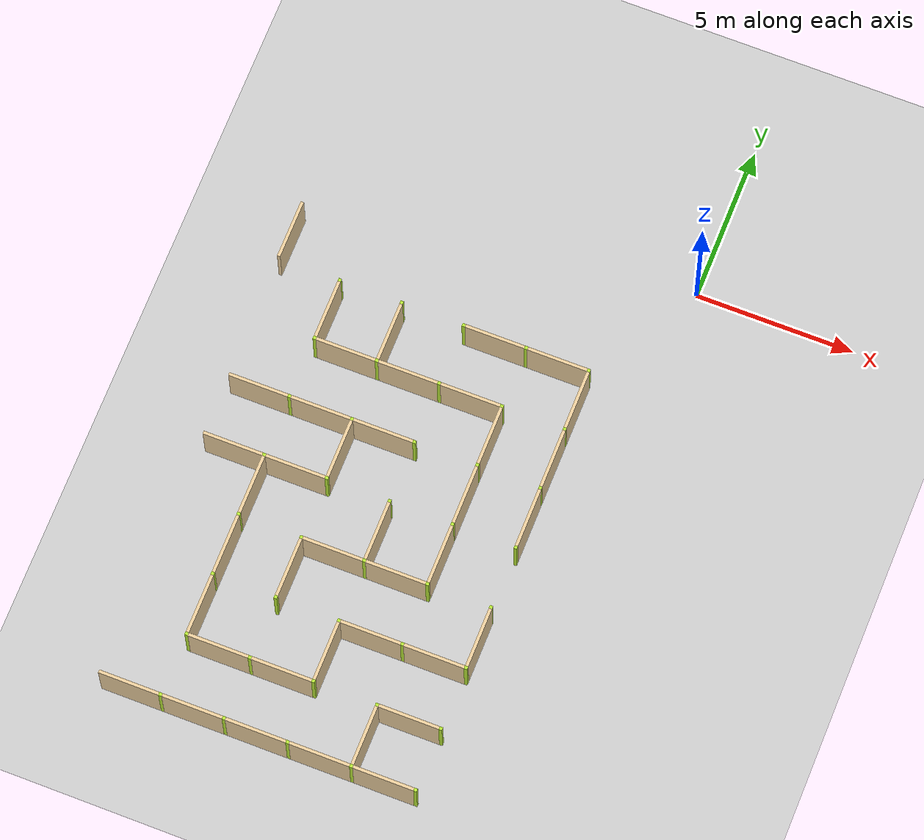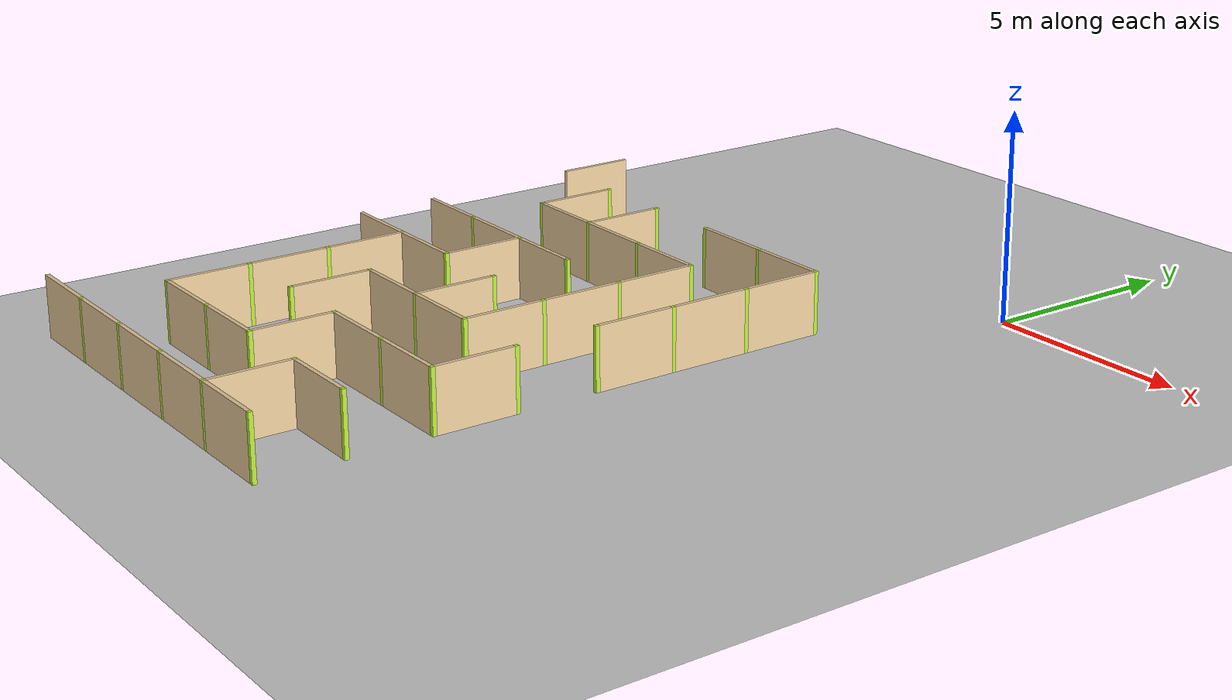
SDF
<sdf version="1.4">
 <world name="maze_world">
  <model name="ground">
   <static>true</static>
   <link name="ground_link">
    <collision name="collision1"><geometry><plane><normal>0 0 1</normal></plane></geometry></collision>
    <visual name="visual1"><geometry><plane><normal>0 0 1</normal><size>100 100</size></plane></geometry></visual>
   </link>
  </model>
  <model name="Untitled">
   <link name="Wall_4_11_v">
    <collision name="Wall_0_Collision">
     <geometry><box><size>1.9 0.1 1.5</size></box></geometry>
     <pose>0 0 0.75 0 -0 0</pose>
    </collision>
    <visual name="Wall_0_Visual">
     <pose>0 0 0.75 0 -0 0</pose>
     <geometry><box><size>1.9 0.1 1.5</size></box></geometry>
     <material>
      <script><uri>file://media/materials/scripts/gazebo.material</uri><name>Gazebo/Grey</name></script>
      <ambient>0.921569 0.807843 0.615686 1</ambient>
     </material>
     <meta><layer>0</layer></meta>
    </visual>
    <pose>-12 -3.0 0 0 -0 1.5708</pose>
   </link>
   <link name="Wall_5_12_v">
    <collision name="Wall_0_Collision">
     <geometry><box><size>1.9 0.1 1.5</size></box></geometry>
     <pose>0 0 0.75 0 -0 0</pose>
    </collision>
    <visual name="Wall_0_Visual">
     <pose>0 0 0.75 0 -0 0</pose>
     <geometry><box><size>1.9 0.1 1.5</size></box></geometry>
     <material>
      <script><uri>file://media/materials/scripts/gazebo.material</uri><name>Gazebo/Grey</name></script>
      <ambient>0.921569 0.807843 0.615686 1</ambient>
     </material>
     <meta><layer>0</layer></meta>
    </visual>
    <pose>-10 -5.0 0 0 -0 1.5708</pose>
   </link>
   <link name="Joint_-10_-4">
    <collision name="Wall_2_Collision">
     <geometry><box><size>0.1 0.1 1.5</size></box></geometry>
     <pose>0 0 0.75 0 -0 0</pose>
    </collision>
    <visual name="Wall_2_Visual">
     <pose>0 0 0.75 0 -0 0</pose>
     <geometry><box><size>0.1 0.1 1.5</size></box></geometry>
     <material>
      <script><uri>file://media/materials/scripts/gazebo.material</uri><name>Gazebo/Grey</name></script>
      <ambient>0.721569 0.907843 0.215686 1</ambient>
     </material>
     <meta><layer>0</layer></meta>
    </visual>
    <pose>-10 -4 0 0 -0 0</pose>
   </link>
   <link name="Wall_6_12_v">
    <collision name="Wall_0_Collision">
     <geometry><box><size>1.9 0.1 1.5</size></box></geometry>
     <pose>0 0 0.75 0 -0 0</pose>
    </collision>
    <visual name="Wall_0_Visual">
     <pose>0 0 0.75 0 -0 0</pose>
     <geometry><box><size>1.9 0.1 1.5</size></box></geometry>
     <material>
      <script><uri>file://media/materials/scripts/gazebo.material</uri><name>Gazebo/Grey</name></script>
      <ambient>0.921569 0.807843 0.615686 1</ambient>
     </material>
     <meta><layer>0</layer></meta>
    </visual>
    <pose>-8 -5.0 0 0 -0 1.5708</pose>
   </link>
   <link name="Joint_-8_-4">
    <collision name="Wall_2_Collision">
     <geometry><box><size>0.1 0.1 1.5</size></box></geometry>
     <pose>0 0 0.75 0 -0 0</pose>
    </collision>
    <visual name="Wall_2_Visual">
     <pose>0 0 0.75 0 -0 0</pose>
     <geometry><box><size>0.1 0.1 1.5</size></box></geometry>
     <material>
      <script><uri>file://media/materials/scripts/gazebo.material</uri><name>Gazebo/Grey</name></script>
      <ambient>0.721569 0.907843 0.215686 1</ambient>
     </material>
     <meta><layer>0</layer></meta>
    </visual>
    <pose>-8 -4 0 0 -0 0</pose>
   </link>
   <link name="Wall_7_12_h">
    <collision name="Wall_0_Collision">
     <geometry><box><size>1.9 0.1 1.5</size></box></geometry>
     <pose>0 0 0.75 0 -0 0</pose>
    </collision>
    <visual name="Wall_0_Visual">
     <pose>0 0 0.75 0 -0 0</pose>
     <geometry><box><size>1.9 0.1 1.5</size></box></geometry>
     <material>
      <script><uri>file://media/materials/scripts/gazebo.material</uri><name>Gazebo/Grey</name></script>
      <ambient>0.921569 0.807843 0.615686 1</ambient>
     </material>
     <meta><layer>0</layer></meta>
    </visual>
    <pose>-5.0 -4 0 0 -0 0</pose>
   </link>
   <link name="Joint_-6_-4">
    <collision name="Wall_2_Collision">
     <geometry><box><size>0.1 0.1 1.5</size></box></geometry>
     <pose>0 0 0.75 0 -0 0</pose>
    </collision>
    <visual name="Wall_2_Visual">
     <pose>0 0 0.75 0 -0 0</pose>
     <geometry><box><size>0.1 0.1 1.5</size></box></geometry>
     <material>
      <script><uri>file://media/materials/scripts/gazebo.material</uri><name>Gazebo/Grey</name></script>
      <ambient>0.721569 0.907843 0.215686 1</ambient>
     </material>
     <meta><layer>0</layer></meta>
    </visual>
    <pose>-6 -4 0 0 -0 0</pose>
   </link>
   <link name="Wall_8_12_h">
    <collision name="Wall_0_Collision">
     <geometry><box><size>1.9 0.1 1.5</size></box></geometry>
     <pose>0 0 0.75 0 -0 0</pose>
    </collision>
    <visual name="Wall_0_Visual">
     <pose>0 0 0.75 0 -0 0</pose>
     <geometry><box><size>1.9 0.1 1.5</size></box></geometry>
     <material>
      <script><uri>file://media/materials/scripts/gazebo.material</uri><name>Gazebo/Grey</name></script>
      <ambient>0.921569 0.807843 0.615686 1</ambient>
     </material>
     <meta><layer>0</layer></meta>
    </visual>
    <pose>-3.0 -4 0 0 -0 0</pose>
   </link>
   <link name="Joint_-4_-4">
    <collision name="Wall_2_Collision">
     <geometry><box><size>0.1 0.1 1.5</size></box></geometry>
     <pose>0 0 0.75 0 -0 0</pose>
    </collision>
    <visual name="Wall_2_Visual">
     <pose>0 0 0.75 0 -0 0</pose>
     <geometry><box><size>0.1 0.1 1.5</size></box></geometry>
     <material>
      <script><uri>file://media/materials/scripts/gazebo.material</uri><name>Gazebo/Grey</name></script>
      <ambient>0.721569 0.907843 0.215686 1</ambient>
     </material>
     <meta><layer>0</layer></meta>
    </visual>
    <pose>-4 -4 0 0 -0 0</pose>
   </link>
   <link name="Wall_9_12_v">
    <collision name="Wall_0_Collision">
     <geometry><box><size>1.9 0.1 1.5</size></box></geometry>
     <pose>0 0 0.75 0 -0 0</pose>
    </collision>
    <visual name="Wall_0_Visual">
     <pose>0 0 0.75 0 -0 0</pose>
     <geometry><box><size>1.9 0.1 1.5</size></box></geometry>
     <material>
      <script><uri>file://media/materials/scripts/gazebo.material</uri><name>Gazebo/Grey</name></script>
      <ambient>0.921569 0.807843 0.615686 1</ambient>
     </material>
     <meta><layer>0</layer></meta>
    </visual>
    <pose>-2 -5.0 0 0 -0 1.5708</pose>
   </link>
   <link name="Joint_-2_-4">
    <collision name="Wall_2_Collision">
     <geometry><box><size>0.1 0.1 1.5</size></box></geometry>
     <pose>0 0 0.75 0 -0 0</pose>
    </collision>
    <visual name="Wall_2_Visual">
     <pose>0 0 0.75 0 -0 0</pose>
     <geometry><box><size>0.1 0.1 1.5</size></box></geometry>
     <material>
      <script><uri>file://media/materials/scripts/gazebo.material</uri><name>Gazebo/Grey</name></script>
      <ambient>0.721569 0.907843 0.215686 1</ambient>
     </material>
     <meta><layer>0</layer></meta>
    </visual>
    <pose>-2 -4 0 0 -0 0</pose>
   </link>
   <link name="Wall_5_13_h">
    <collision name="Wall_0_Collision">
     <geometry><box><size>1.9 0.1 1.5</size></box></geometry>
     <pose>0 0 0.75 0 -0 0</pose>
    </collision>
    <visual name="Wall_0_Visual">
     <pose>0 0 0.75 0 -0 0</pose>
     <geometry><box><size>1.9 0.1 1.5</size></box></geometry>
     <material>
      <script><uri>file://media/materials/scripts/gazebo.material</uri><name>Gazebo/Grey</name></script>
      <ambient>0.921569 0.807843 0.615686 1</ambient>
     </material>
     <meta><layer>0</layer></meta>
    </visual>
    <pose>-9.0 -6 0 0 -0 0</pose>
   </link>
   <link name="Joint_-10_-6">
    <collision name="Wall_2_Collision">
     <geometry><box><size>0.1 0.1 1.5</size></box></geometry>
     <pose>0 0 0.75 0 -0 0</pose>
    </collision>
    <visual name="Wall_2_Visual">
     <pose>0 0 0.75 0 -0 0</pose>
     <geometry><box><size>0.1 0.1 1.5</size></box></geometry>
     <material>
      <script><uri>file://media/materials/scripts/gazebo.material</uri><name>Gazebo/Grey</name></script>
      <ambient>0.721569 0.907843 0.215686 1</ambient>
     </material>
     <meta><layer>0</layer></meta>
    </visual>
    <pose>-10 -6 0 0 -0 0</pose>
   </link>
   <link name="Wall_6_13_h">
    <collision name="Wall_0_Collision">
     <geometry><box><size>1.9 0.1 1.5</size></box></geometry>
     <pose>0 0 0.75 0 -0 0</pose>
    </collision>
    <visual name="Wall_0_Visual">
     <pose>0 0 0.75 0 -0 0</pose>
     <geometry><box><size>1.9 0.1 1.5</size></box></geometry>
     <material>
      <script><uri>file://media/materials/scripts/gazebo.material</uri><name>Gazebo/Grey</name></script>
      <ambient>0.921569 0.807843 0.615686 1</ambient>
     </material>
     <meta><layer>0</layer></meta>
    </visual>
    <pose>-7.0 -6 0 0 -0 0</pose>
   </link>
   <link name="Joint_-8_-6">
    <collision name="Wall_2_Collision">
     <geometry><box><size>0.1 0.1 1.5</size></box></geometry>
     <pose>0 0 0.75 0 -0 0</pose>
    </collision>
    <visual name="Wall_2_Visual">
     <pose>0 0 0.75 0 -0 0</pose>
     <geometry><box><size>0.1 0.1 1.5</size></box></geometry>
     <material>
      <script><uri>file://media/materials/scripts/gazebo.material</uri><name>Gazebo/Grey</name></script>
      <ambient>0.721569 0.907843 0.215686 1</ambient>
     </material>
     <meta><layer>0</layer></meta>
    </visual>
    <pose>-8 -6 0 0 -0 0</pose>
   </link>
   <link name="Wall_7_13_h">
    <collision name="Wall_0_Collision">
     <geometry><box><size>1.9 0.1 1.5</size></box></geometry>
     <pose>0 0 0.75 0 -0 0</pose>
    </collision>
    <visual name="Wall_0_Visual">
     <pose>0 0 0.75 0 -0 0</pose>
     <geometry><box><size>1.9 0.1 1.5</size></box></geometry>
     <material>
      <script><uri>file://media/materials/scripts/gazebo.material</uri><name>Gazebo/Grey</name></script>
      <ambient>0.921569 0.807843 0.615686 1</ambient>
     </material>
     <meta><layer>0</layer></meta>
    </visual>
    <pose>-5.0 -6 0 0 -0 0</pose>
   </link>
   <link name="Joint_-6_-6">
    <collision name="Wall_2_Collision">
     <geometry><box><size>0.1 0.1 1.5</size></box></geometry>
     <pose>0 0 0.75 0 -0 0</pose>
    </collision>
    <visual name="Wall_2_Visual">
     <pose>0 0 0.75 0 -0 0</pose>
     <geometry><box><size>0.1 0.1 1.5</size></box></geometry>
     <material>
      <script><uri>file://media/materials/scripts/gazebo.material</uri><name>Gazebo/Grey</name></script>
      <ambient>0.721569 0.907843 0.215686 1</ambient>
     </material>
     <meta><layer>0</layer></meta>
    </visual>
    <pose>-6 -6 0 0 -0 0</pose>
   </link>
   <link name="Wall_8_13_v">
    <collision name="Wall_0_Collision">
     <geometry><box><size>1.9 0.1 1.5</size></box></geometry>
     <pose>0 0 0.75 0 -0 0</pose>
    </collision>
    <visual name="Wall_0_Visual">
     <pose>0 0 0.75 0 -0 0</pose>
     <geometry><box><size>1.9 0.1 1.5</size></box></geometry>
     <material>
      <script><uri>file://media/materials/scripts/gazebo.material</uri><name>Gazebo/Grey</name></script>
      <ambient>0.921569 0.807843 0.615686 1</ambient>
     </material>
     <meta><layer>0</layer></meta>
    </visual>
    <pose>-4 -7.0 0 0 -0 1.5708</pose>
   </link>
   <link name="Joint_-4_-6">
    <collision name="Wall_2_Collision">
     <geometry><box><size>0.1 0.1 1.5</size></box></geometry>
     <pose>0 0 0.75 0 -0 0</pose>
    </collision>
    <visual name="Wall_2_Visual">
     <pose>0 0 0.75 0 -0 0</pose>
     <geometry><box><size>0.1 0.1 1.5</size></box></geometry>
     <material>
      <script><uri>file://media/materials/scripts/gazebo.material</uri><name>Gazebo/Grey</name></script>
      <ambient>0.721569 0.907843 0.215686 1</ambient>
     </material>
     <meta><layer>0</layer></meta>
    </visual>
    <pose>-4 -6 0 0 -0 0</pose>
   </link>
   <link name="Wall_9_13_v">
    <collision name="Wall_0_Collision">
     <geometry><box><size>1.9 0.1 1.5</size></box></geometry>
     <pose>0 0 0.75 0 -0 0</pose>
    </collision>
    <visual name="Wall_0_Visual">
     <pose>0 0 0.75 0 -0 0</pose>
     <geometry><box><size>1.9 0.1 1.5</size></box></geometry>
     <material>
      <script><uri>file://media/materials/scripts/gazebo.material</uri><name>Gazebo/Grey</name></script>
      <ambient>0.921569 0.807843 0.615686 1</ambient>
     </material>
     <meta><layer>0</layer></meta>
    </visual>
    <pose>-2 -7.0 0 0 -0 1.5708</pose>
   </link>
   <link name="Joint_-2_-6">
    <collision name="Wall_2_Collision">
     <geometry><box><size>0.1 0.1 1.5</size></box></geometry>
     <pose>0 0 0.75 0 -0 0</pose>
    </collision>
    <visual name="Wall_2_Visual">
     <pose>0 0 0.75 0 -0 0</pose>
     <geometry><box><size>0.1 0.1 1.5</size></box></geometry>
     <material>
      <script><uri>file://media/materials/scripts/gazebo.material</uri><name>Gazebo/Grey</name></script>
      <ambient>0.721569 0.907843 0.215686 1</ambient>
     </material>
     <meta><layer>0</layer></meta>
    </visual>
    <pose>-2 -6 0 0 -0 0</pose>
   </link>
   <link name="Wall_4_14_h">
    <collision name="Wall_0_Collision">
     <geometry><box><size>1.9 0.1 1.5</size></box></geometry>
     <pose>0 0 0.75 0 -0 0</pose>
    </collision>
    <visual name="Wall_0_Visual">
     <pose>0 0 0.75 0 -0 0</pose>
     <geometry><box><size>1.9 0.1 1.5</size></box></geometry>
     <material>
      <script><uri>file://media/materials/scripts/gazebo.material</uri><name>Gazebo/Grey</name></script>
      <ambient>0.921569 0.807843 0.615686 1</ambient>
     </material>
     <meta><layer>0</layer></meta>
    </visual>
    <pose>-11.0 -8 0 0 -0 0</pose>
   </link>
   <link name="Wall_5_14_h">
    <collision name="Wall_0_Collision">
     <geometry><box><size>1.9 0.1 1.5</size></box></geometry>
     <pose>0 0 0.75 0 -0 0</pose>
    </collision>
    <visual name="Wall_0_Visual">
     <pose>0 0 0.75 0 -0 0</pose>
     <geometry><box><size>1.9 0.1 1.5</size></box></geometry>
     <material>
      <script><uri>file://media/materials/scripts/gazebo.material</uri><name>Gazebo/Grey</name></script>
      <ambient>0.921569 0.807843 0.615686 1</ambient>
     </material>
     <meta><layer>0</layer></meta>
    </visual>
    <pose>-9.0 -8 0 0 -0 0</pose>
   </link>
   <link name="Joint_-10_-8">
    <collision name="Wall_2_Collision">
     <geometry><box><size>0.1 0.1 1.5</size></box></geometry>
     <pose>0 0 0.75 0 -0 0</pose>
    </collision>
    <visual name="Wall_2_Visual">
     <pose>0 0 0.75 0 -0 0</pose>
     <geometry><box><size>0.1 0.1 1.5</size></box></geometry>
     <material>
      <script><uri>file://media/materials/scripts/gazebo.material</uri><name>Gazebo/Grey</name></script>
      <ambient>0.721569 0.907843 0.215686 1</ambient>
     </material>
     <meta><layer>0</layer></meta>
    </visual>
    <pose>-10 -8 0 0 -0 0</pose>
   </link>
   <link name="Wall_6_14_h">
    <collision name="Wall_0_Collision">
     <geometry><box><size>1.9 0.1 1.5</size></box></geometry>
     <pose>0 0 0.75 0 -0 0</pose>
    </collision>
    <visual name="Wall_0_Visual">
     <pose>0 0 0.75 0 -0 0</pose>
     <geometry><box><size>1.9 0.1 1.5</size></box></geometry>
     <material>
      <script><uri>file://media/materials/scripts/gazebo.material</uri><name>Gazebo/Grey</name></script>
      <ambient>0.921569 0.807843 0.615686 1</ambient>
     </material>
     <meta><layer>0</layer></meta>
    </visual>
    <pose>-7.0 -8 0 0 -0 0</pose>
   </link>
   <link name="Wall_6_14_v">
    <collision name="Wall_0_Collision">
     <geometry><box><size>1.9 0.1 1.5</size></box></geometry>
     <pose>0 0 0.75 0 -0 0</pose>
    </collision>
    <visual name="Wall_0_Visual">
     <pose>0 0 0.75 0 -0 0</pose>
     <geometry><box><size>1.9 0.1 1.5</size></box></geometry>
     <material>
      <script><uri>file://media/materials/scripts/gazebo.material</uri><name>Gazebo/Grey</name></script>
      <ambient>0.921569 0.807843 0.615686 1</ambient>
     </material>
     <meta><layer>0</layer></meta>
    </visual>
    <pose>-8 -9.0 0 0 -0 1.5708</pose>
   </link>
   <link name="Joint_-8_-8">
    <collision name="Wall_2_Collision">
     <geometry><box><size>0.1 0.1 1.5</size></box></geometry>
     <pose>0 0 0.75 0 -0 0</pose>
    </collision>
    <visual name="Wall_2_Visual">
     <pose>0 0 0.75 0 -0 0</pose>
     <geometry><box><size>0.1 0.1 1.5</size></box></geometry>
     <material>
      <script><uri>file://media/materials/scripts/gazebo.material</uri><name>Gazebo/Grey</name></script>
      <ambient>0.721569 0.907843 0.215686 1</ambient>
     </material>
     <meta><layer>0</layer></meta>
    </visual>
    <pose>-8 -8 0 0 -0 0</pose>
   </link>
   <link name="Joint_-6_-8">
    <collision name="Wall_2_Collision">
     <geometry><box><size>0.1 0.1 1.5</size></box></geometry>
     <pose>0 0 0.75 0 -0 0</pose>
    </collision>
    <visual name="Wall_2_Visual">
     <pose>0 0 0.75 0 -0 0</pose>
     <geometry><box><size>0.1 0.1 1.5</size></box></geometry>
     <material>
      <script><uri>file://media/materials/scripts/gazebo.material</uri><name>Gazebo/Grey</name></script>
      <ambient>0.721569 0.907843 0.215686 1</ambient>
     </material>
     <meta><layer>0</layer></meta>
    </visual>
    <pose>-6 -8 0 0 -0 0</pose>
   </link>
   <link name="Wall_8_14_v">
    <collision name="Wall_0_Collision">
     <geometry><box><size>1.9 0.1 1.5</size></box></geometry>
     <pose>0 0 0.75 0 -0 0</pose>
    </collision>
    <visual name="Wall_0_Visual">
     <pose>0 0 0.75 0 -0 0</pose>
     <geometry><box><size>1.9 0.1 1.5</size></box></geometry>
     <material>
      <script><uri>file://media/materials/scripts/gazebo.material</uri><name>Gazebo/Grey</name></script>
      <ambient>0.921569 0.807843 0.615686 1</ambient>
     </material>
     <meta><layer>0</layer></meta>
    </visual>
    <pose>-4 -9.0 0 0 -0 1.5708</pose>
   </link>
   <link name="Joint_-4_-8">
    <collision name="Wall_2_Collision">
     <geometry><box><size>0.1 0.1 1.5</size></box></geometry>
     <pose>0 0 0.75 0 -0 0</pose>
    </collision>
    <visual name="Wall_2_Visual">
     <pose>0 0 0.75 0 -0 0</pose>
     <geometry><box><size>0.1 0.1 1.5</size></box></geometry>
     <material>
      <script><uri>file://media/materials/scripts/gazebo.material</uri><name>Gazebo/Grey</name></script>
      <ambient>0.721569 0.907843 0.215686 1</ambient>
     </material>
     <meta><layer>0</layer></meta>
    </visual>
    <pose>-4 -8 0 0 -0 0</pose>
   </link>
   <link name="Wall_9_14_v">
    <collision name="Wall_0_Collision">
     <geometry><box><size>1.9 0.1 1.5</size></box></geometry>
     <pose>0 0 0.75 0 -0 0</pose>
    </collision>
    <visual name="Wall_0_Visual">
     <pose>0 0 0.75 0 -0 0</pose>
     <geometry><box><size>1.9 0.1 1.5</size></box></geometry>
     <material>
      <script><uri>file://media/materials/scripts/gazebo.material</uri><name>Gazebo/Grey</name></script>
      <ambient>0.921569 0.807843 0.615686 1</ambient>
     </material>
     <meta><layer>0</layer></meta>
    </visual>
    <pose>-2 -9.0 0 0 -0 1.5708</pose>
   </link>
   <link name="Joint_-2_-8">
    <collision name="Wall_2_Collision">
     <geometry><box><size>0.1 0.1 1.5</size></box></geometry>
     <pose>0 0 0.75 0 -0 0</pose>
    </collision>
    <visual name="Wall_2_Visual">
     <pose>0 0 0.75 0 -0 0</pose>
     <geometry><box><size>0.1 0.1 1.5</size></box></geometry>
     <material>
      <script><uri>file://media/materials/scripts/gazebo.material</uri><name>Gazebo/Grey</name></script>
      <ambient>0.721569 0.907843 0.215686 1</ambient>
     </material>
     <meta><layer>0</layer></meta>
    </visual>
    <pose>-2 -8 0 0 -0 0</pose>
   </link>
   <link name="Wall_4_15_h">
    <collision name="Wall_0_Collision">
     <geometry><box><size>1.9 0.1 1.5</size></box></geometry>
     <pose>0 0 0.75 0 -0 0</pose>
    </collision>
    <visual name="Wall_0_Visual">
     <pose>0 0 0.75 0 -0 0</pose>
     <geometry><box><size>1.9 0.1 1.5</size></box></geometry>
     <material>
      <script><uri>file://media/materials/scripts/gazebo.material</uri><name>Gazebo/Grey</name></script>
      <ambient>0.921569 0.807843 0.615686 1</ambient>
     </material>
     <meta><layer>0</layer></meta>
    </visual>
    <pose>-11.0 -10 0 0 -0 0</pose>
   </link>
   <link name="Wall_5_15_h">
    <collision name="Wall_0_Collision">
     <geometry><box><size>1.9 0.1 1.5</size></box></geometry>
     <pose>0 0 0.75 0 -0 0</pose>
    </collision>
    <visual name="Wall_0_Visual">
     <pose>0 0 0.75 0 -0 0</pose>
     <geometry><box><size>1.9 0.1 1.5</size></box></geometry>
     <material>
      <script><uri>file://media/materials/scripts/gazebo.material</uri><name>Gazebo/Grey</name></script>
      <ambient>0.921569 0.807843 0.615686 1</ambient>
     </material>
     <meta><layer>0</layer></meta>
    </visual>
    <pose>-9.0 -10 0 0 -0 0</pose>
   </link>
   <link name="Wall_5_15_v">
    <collision name="Wall_0_Collision">
     <geometry><box><size>1.9 0.1 1.5</size></box></geometry>
     <pose>0 0 0.75 0 -0 0</pose>
    </collision>
    <visual name="Wall_0_Visual">
     <pose>0 0 0.75 0 -0 0</pose>
     <geometry><box><size>1.9 0.1 1.5</size></box></geometry>
     <material>
      <script><uri>file://media/materials/scripts/gazebo.material</uri><name>Gazebo/Grey</name></script>
      <ambient>0.921569 0.807843 0.615686 1</ambient>
     </material>
     <meta><layer>0</layer></meta>
    </visual>
    <pose>-10 -11.0 0 0 -0 1.5708</pose>
   </link>
   <link name="Joint_-10_-10">
    <collision name="Wall_2_Collision">
     <geometry><box><size>0.1 0.1 1.5</size></box></geometry>
     <pose>0 0 0.75 0 -0 0</pose>
    </collision>
    <visual name="Wall_2_Visual">
     <pose>0 0 0.75 0 -0 0</pose>
     <geometry><box><size>0.1 0.1 1.5</size></box></geometry>
     <material>
      <script><uri>file://media/materials/scripts/gazebo.material</uri><name>Gazebo/Grey</name></script>
      <ambient>0.721569 0.907843 0.215686 1</ambient>
     </material>
     <meta><layer>0</layer></meta>
    </visual>
    <pose>-10 -10 0 0 -0 0</pose>
   </link>
   <link name="Joint_-8_-10">
    <collision name="Wall_2_Collision">
     <geometry><box><size>0.1 0.1 1.5</size></box></geometry>
     <pose>0 0 0.75 0 -0 0</pose>
    </collision>
    <visual name="Wall_2_Visual">
     <pose>0 0 0.75 0 -0 0</pose>
     <geometry><box><size>0.1 0.1 1.5</size></box></geometry>
     <material>
      <script><uri>file://media/materials/scripts/gazebo.material</uri><name>Gazebo/Grey</name></script>
      <ambient>0.721569 0.907843 0.215686 1</ambient>
     </material>
     <meta><layer>0</layer></meta>
    </visual>
    <pose>-8 -10 0 0 -0 0</pose>
   </link>
   <link name="Wall_7_15_v">
    <collision name="Wall_0_Collision">
     <geometry><box><size>1.9 0.1 1.5</size></box></geometry>
     <pose>0 0 0.75 0 -0 0</pose>
    </collision>
    <visual name="Wall_0_Visual">
     <pose>0 0 0.75 0 -0 0</pose>
     <geometry><box><size>1.9 0.1 1.5</size></box></geometry>
     <material>
      <script><uri>file://media/materials/scripts/gazebo.material</uri><name>Gazebo/Grey</name></script>
      <ambient>0.921569 0.807843 0.615686 1</ambient>
     </material>
     <meta><layer>0</layer></meta>
    </visual>
    <pose>-6 -11.0 0 0 -0 1.5708</pose>
   </link>
   <link name="Joint_-6_-10">
    <collision name="Wall_2_Collision">
     <geometry><box><size>0.1 0.1 1.5</size></box></geometry>
     <pose>0 0 0.75 0 -0 0</pose>
    </collision>
    <visual name="Wall_2_Visual">
     <pose>0 0 0.75 0 -0 0</pose>
     <geometry><box><size>0.1 0.1 1.5</size></box></geometry>
     <material>
      <script><uri>file://media/materials/scripts/gazebo.material</uri><name>Gazebo/Grey</name></script>
      <ambient>0.721569 0.907843 0.215686 1</ambient>
     </material>
     <meta><layer>0</layer></meta>
    </visual>
    <pose>-6 -10 0 0 -0 0</pose>
   </link>
   <link name="Wall_8_15_v">
    <collision name="Wall_0_Collision">
     <geometry><box><size>1.9 0.1 1.5</size></box></geometry>
     <pose>0 0 0.75 0 -0 0</pose>
    </collision>
    <visual name="Wall_0_Visual">
     <pose>0 0 0.75 0 -0 0</pose>
     <geometry><box><size>1.9 0.1 1.5</size></box></geometry>
     <material>
      <script><uri>file://media/materials/scripts/gazebo.material</uri><name>Gazebo/Grey</name></script>
      <ambient>0.921569 0.807843 0.615686 1</ambient>
     </material>
     <meta><layer>0</layer></meta>
    </visual>
    <pose>-4 -11.0 0 0 -0 1.5708</pose>
   </link>
   <link name="Joint_-4_-10">
    <collision name="Wall_2_Collision">
     <geometry><box><size>0.1 0.1 1.5</size></box></geometry>
     <pose>0 0 0.75 0 -0 0</pose>
    </collision>
    <visual name="Wall_2_Visual">
     <pose>0 0 0.75 0 -0 0</pose>
     <geometry><box><size>0.1 0.1 1.5</size></box></geometry>
     <material>
      <script><uri>file://media/materials/scripts/gazebo.material</uri><name>Gazebo/Grey</name></script>
      <ambient>0.721569 0.907843 0.215686 1</ambient>
     </material>
     <meta><layer>0</layer></meta>
    </visual>
    <pose>-4 -10 0 0 -0 0</pose>
   </link>
   <link name="Joint_-2_-10">
    <collision name="Wall_2_Collision">
     <geometry><box><size>0.1 0.1 1.5</size></box></geometry>
     <pose>0 0 0.75 0 -0 0</pose>
    </collision>
    <visual name="Wall_2_Visual">
     <pose>0 0 0.75 0 -0 0</pose>
     <geometry><box><size>0.1 0.1 1.5</size></box></geometry>
     <material>
      <script><uri>file://media/materials/scripts/gazebo.material</uri><name>Gazebo/Grey</name></script>
      <ambient>0.721569 0.907843 0.215686 1</ambient>
     </material>
     <meta><layer>0</layer></meta>
    </visual>
    <pose>-2 -10 0 0 -0 0</pose>
   </link>
   <link name="Wall_5_16_v">
    <collision name="Wall_0_Collision">
     <geometry><box><size>1.9 0.1 1.5</size></box></geometry>
     <pose>0 0 0.75 0 -0 0</pose>
    </collision>
    <visual name="Wall_0_Visual">
     <pose>0 0 0.75 0 -0 0</pose>
     <geometry><box><size>1.9 0.1 1.5</size></box></geometry>
     <material>
      <script><uri>file://media/materials/scripts/gazebo.material</uri><name>Gazebo/Grey</name></script>
      <ambient>0.921569 0.807843 0.615686 1</ambient>
     </material>
     <meta><layer>0</layer></meta>
    </visual>
    <pose>-10 -13.0 0 0 -0 1.5708</pose>
   </link>
   <link name="Joint_-10_-12">
    <collision name="Wall_2_Collision">
     <geometry><box><size>0.1 0.1 1.5</size></box></geometry>
     <pose>0 0 0.75 0 -0 0</pose>
    </collision>
    <visual name="Wall_2_Visual">
     <pose>0 0 0.75 0 -0 0</pose>
     <geometry><box><size>0.1 0.1 1.5</size></box></geometry>
     <material>
      <script><uri>file://media/materials/scripts/gazebo.material</uri><name>Gazebo/Grey</name></script>
      <ambient>0.721569 0.907843 0.215686 1</ambient>
     </material>
     <meta><layer>0</layer></meta>
    </visual>
    <pose>-10 -12 0 0 -0 0</pose>
   </link>
   <link name="Wall_6_16_h">
    <collision name="Wall_0_Collision">
     <geometry><box><size>1.9 0.1 1.5</size></box></geometry>
     <pose>0 0 0.75 0 -0 0</pose>
    </collision>
    <visual name="Wall_0_Visual">
     <pose>0 0 0.75 0 -0 0</pose>
     <geometry><box><size>1.9 0.1 1.5</size></box></geometry>
     <material>
      <script><uri>file://media/materials/scripts/gazebo.material</uri><name>Gazebo/Grey</name></script>
      <ambient>0.921569 0.807843 0.615686 1</ambient>
     </material>
     <meta><layer>0</layer></meta>
    </visual>
    <pose>-7.0 -12 0 0 -0 0</pose>
   </link>
   <link name="Wall_6_16_v">
    <collision name="Wall_0_Collision">
     <geometry><box><size>1.9 0.1 1.5</size></box></geometry>
     <pose>0 0 0.75 0 -0 0</pose>
    </collision>
    <visual name="Wall_0_Visual">
     <pose>0 0 0.75 0 -0 0</pose>
     <geometry><box><size>1.9 0.1 1.5</size></box></geometry>
     <material>
      <script><uri>file://media/materials/scripts/gazebo.material</uri><name>Gazebo/Grey</name></script>
      <ambient>0.921569 0.807843 0.615686 1</ambient>
     </material>
     <meta><layer>0</layer></meta>
    </visual>
    <pose>-8 -13.0 0 0 -0 1.5708</pose>
   </link>
   <link name="Joint_-8_-12">
    <collision name="Wall_2_Collision">
     <geometry><box><size>0.1 0.1 1.5</size></box></geometry>
     <pose>0 0 0.75 0 -0 0</pose>
    </collision>
    <visual name="Wall_2_Visual">
     <pose>0 0 0.75 0 -0 0</pose>
     <geometry><box><size>0.1 0.1 1.5</size></box></geometry>
     <material>
      <script><uri>file://media/materials/scripts/gazebo.material</uri><name>Gazebo/Grey</name></script>
      <ambient>0.721569 0.907843 0.215686 1</ambient>
     </material>
     <meta><layer>0</layer></meta>
    </visual>
    <pose>-8 -12 0 0 -0 0</pose>
   </link>
   <link name="Wall_7_16_h">
    <collision name="Wall_0_Collision">
     <geometry><box><size>1.9 0.1 1.5</size></box></geometry>
     <pose>0 0 0.75 0 -0 0</pose>
    </collision>
    <visual name="Wall_0_Visual">
     <pose>0 0 0.75 0 -0 0</pose>
     <geometry><box><size>1.9 0.1 1.5</size></box></geometry>
     <material>
      <script><uri>file://media/materials/scripts/gazebo.material</uri><name>Gazebo/Grey</name></script>
      <ambient>0.921569 0.807843 0.615686 1</ambient>
     </material>
     <meta><layer>0</layer></meta>
    </visual>
    <pose>-5.0 -12 0 0 -0 0</pose>
   </link>
   <link name="Joint_-6_-12">
    <collision name="Wall_2_Collision">
     <geometry><box><size>0.1 0.1 1.5</size></box></geometry>
     <pose>0 0 0.75 0 -0 0</pose>
    </collision>
    <visual name="Wall_2_Visual">
     <pose>0 0 0.75 0 -0 0</pose>
     <geometry><box><size>0.1 0.1 1.5</size></box></geometry>
     <material>
      <script><uri>file://media/materials/scripts/gazebo.material</uri><name>Gazebo/Grey</name></script>
      <ambient>0.721569 0.907843 0.215686 1</ambient>
     </material>
     <meta><layer>0</layer></meta>
    </visual>
    <pose>-6 -12 0 0 -0 0</pose>
   </link>
   <link name="Joint_-4_-12">
    <collision name="Wall_2_Collision">
     <geometry><box><size>0.1 0.1 1.5</size></box></geometry>
     <pose>0 0 0.75 0 -0 0</pose>
    </collision>
    <visual name="Wall_2_Visual">
     <pose>0 0 0.75 0 -0 0</pose>
     <geometry><box><size>0.1 0.1 1.5</size></box></geometry>
     <material>
      <script><uri>file://media/materials/scripts/gazebo.material</uri><name>Gazebo/Grey</name></script>
      <ambient>0.721569 0.907843 0.215686 1</ambient>
     </material>
     <meta><layer>0</layer></meta>
    </visual>
    <pose>-4 -12 0 0 -0 0</pose>
   </link>
   <link name="Wall_9_16_v">
    <collision name="Wall_0_Collision">
     <geometry><box><size>1.9 0.1 1.5</size></box></geometry>
     <pose>0 0 0.75 0 -0 0</pose>
    </collision>
    <visual name="Wall_0_Visual">
     <pose>0 0 0.75 0 -0 0</pose>
     <geometry><box><size>1.9 0.1 1.5</size></box></geometry>
     <material>
      <script><uri>file://media/materials/scripts/gazebo.material</uri><name>Gazebo/Grey</name></script>
      <ambient>0.921569 0.807843 0.615686 1</ambient>
     </material>
     <meta><layer>0</layer></meta>
    </visual>
    <pose>-2 -13.0 0 0 -0 1.5708</pose>
   </link>
   <link name="Joint_-2_-12">
    <collision name="Wall_2_Collision">
     <geometry><box><size>0.1 0.1 1.5</size></box></geometry>
     <pose>0 0 0.75 0 -0 0</pose>
    </collision>
    <visual name="Wall_2_Visual">
     <pose>0 0 0.75 0 -0 0</pose>
     <geometry><box><size>0.1 0.1 1.5</size></box></geometry>
     <material>
      <script><uri>file://media/materials/scripts/gazebo.material</uri><name>Gazebo/Grey</name></script>
      <ambient>0.721569 0.907843 0.215686 1</ambient>
     </material>
     <meta><layer>0</layer></meta>
    </visual>
    <pose>-2 -12 0 0 -0 0</pose>
   </link>
   <link name="Wall_5_17_v">
    <collision name="Wall_0_Collision">
     <geometry><box><size>1.9 0.1 1.5</size></box></geometry>
     <pose>0 0 0.75 0 -0 0</pose>
    </collision>
    <visual name="Wall_0_Visual">
     <pose>0 0 0.75 0 -0 0</pose>
     <geometry><box><size>1.9 0.1 1.5</size></box></geometry>
     <material>
      <script><uri>file://media/materials/scripts/gazebo.material</uri><name>Gazebo/Grey</name></script>
      <ambient>0.921569 0.807843 0.615686 1</ambient>
     </material>
     <meta><layer>0</layer></meta>
    </visual>
    <pose>-10 -15.0 0 0 -0 1.5708</pose>
   </link>
   <link name="Joint_-10_-14">
    <collision name="Wall_2_Collision">
     <geometry><box><size>0.1 0.1 1.5</size></box></geometry>
     <pose>0 0 0.75 0 -0 0</pose>
    </collision>
    <visual name="Wall_2_Visual">
     <pose>0 0 0.75 0 -0 0</pose>
     <geometry><box><size>0.1 0.1 1.5</size></box></geometry>
     <material>
      <script><uri>file://media/materials/scripts/gazebo.material</uri><name>Gazebo/Grey</name></script>
      <ambient>0.721569 0.907843 0.215686 1</ambient>
     </material>
     <meta><layer>0</layer></meta>
    </visual>
    <pose>-10 -14 0 0 -0 0</pose>
   </link>
   <link name="Joint_-8_-14">
    <collision name="Wall_2_Collision">
     <geometry><box><size>0.1 0.1 1.5</size></box></geometry>
     <pose>0 0 0.75 0 -0 0</pose>
    </collision>
    <visual name="Wall_2_Visual">
     <pose>0 0 0.75 0 -0 0</pose>
     <geometry><box><size>0.1 0.1 1.5</size></box></geometry>
     <material>
      <script><uri>file://media/materials/scripts/gazebo.material</uri><name>Gazebo/Grey</name></script>
      <ambient>0.721569 0.907843 0.215686 1</ambient>
     </material>
     <meta><layer>0</layer></meta>
    </visual>
    <pose>-8 -14 0 0 -0 0</pose>
   </link>
   <link name="Wall_7_17_h">
    <collision name="Wall_0_Collision">
     <geometry><box><size>1.9 0.1 1.5</size></box></geometry>
     <pose>0 0 0.75 0 -0 0</pose>
    </collision>
    <visual name="Wall_0_Visual">
     <pose>0 0 0.75 0 -0 0</pose>
     <geometry><box><size>1.9 0.1 1.5</size></box></geometry>
     <material>
      <script><uri>file://media/materials/scripts/gazebo.material</uri><name>Gazebo/Grey</name></script>
      <ambient>0.921569 0.807843 0.615686 1</ambient>
     </material>
     <meta><layer>0</layer></meta>
    </visual>
    <pose>-5.0 -14 0 0 -0 0</pose>
   </link>
   <link name="Wall_7_17_v">
    <collision name="Wall_0_Collision">
     <geometry><box><size>1.9 0.1 1.5</size></box></geometry>
     <pose>0 0 0.75 0 -0 0</pose>
    </collision>
    <visual name="Wall_0_Visual">
     <pose>0 0 0.75 0 -0 0</pose>
     <geometry><box><size>1.9 0.1 1.5</size></box></geometry>
     <material>
      <script><uri>file://media/materials/scripts/gazebo.material</uri><name>Gazebo/Grey</name></script>
      <ambient>0.921569 0.807843 0.615686 1</ambient>
     </material>
     <meta><layer>0</layer></meta>
    </visual>
    <pose>-6 -15.0 0 0 -0 1.5708</pose>
   </link>
   <link name="Joint_-6_-14">
    <collision name="Wall_2_Collision">
     <geometry><box><size>0.1 0.1 1.5</size></box></geometry>
     <pose>0 0 0.75 0 -0 0</pose>
    </collision>
    <visual name="Wall_2_Visual">
     <pose>0 0 0.75 0 -0 0</pose>
     <geometry><box><size>0.1 0.1 1.5</size></box></geometry>
     <material>
      <script><uri>file://media/materials/scripts/gazebo.material</uri><name>Gazebo/Grey</name></script>
      <ambient>0.721569 0.907843 0.215686 1</ambient>
     </material>
     <meta><layer>0</layer></meta>
    </visual>
    <pose>-6 -14 0 0 -0 0</pose>
   </link>
   <link name="Wall_8_17_h">
    <collision name="Wall_0_Collision">
     <geometry><box><size>1.9 0.1 1.5</size></box></geometry>
     <pose>0 0 0.75 0 -0 0</pose>
    </collision>
    <visual name="Wall_0_Visual">
     <pose>0 0 0.75 0 -0 0</pose>
     <geometry><box><size>1.9 0.1 1.5</size></box></geometry>
     <material>
      <script><uri>file://media/materials/scripts/gazebo.material</uri><name>Gazebo/Grey</name></script>
      <ambient>0.921569 0.807843 0.615686 1</ambient>
     </material>
     <meta><layer>0</layer></meta>
    </visual>
    <pose>-3.0 -14 0 0 -0 0</pose>
   </link>
   <link name="Joint_-4_-14">
    <collision name="Wall_2_Collision">
     <geometry><box><size>0.1 0.1 1.5</size></box></geometry>
     <pose>0 0 0.75 0 -0 0</pose>
    </collision>
    <visual name="Wall_2_Visual">
     <pose>0 0 0.75 0 -0 0</pose>
     <geometry><box><size>0.1 0.1 1.5</size></box></geometry>
     <material>
      <script><uri>file://media/materials/scripts/gazebo.material</uri><name>Gazebo/Grey</name></script>
      <ambient>0.721569 0.907843 0.215686 1</ambient>
     </material>
     <meta><layer>0</layer></meta>
    </visual>
    <pose>-4 -14 0 0 -0 0</pose>
   </link>
   <link name="Joint_-2_-14">
    <collision name="Wall_2_Collision">
     <geometry><box><size>0.1 0.1 1.5</size></box></geometry>
     <pose>0 0 0.75 0 -0 0</pose>
    </collision>
    <visual name="Wall_2_Visual">
     <pose>0 0 0.75 0 -0 0</pose>
     <geometry><box><size>0.1 0.1 1.5</size></box></geometry>
     <material>
      <script><uri>file://media/materials/scripts/gazebo.material</uri><name>Gazebo/Grey</name></script>
      <ambient>0.721569 0.907843 0.215686 1</ambient>
     </material>
     <meta><layer>0</layer></meta>
    </visual>
    <pose>-2 -14 0 0 -0 0</pose>
   </link>
   <link name="Wall_4_19_h">
    <collision name="Wall_0_Collision">
     <geometry><box><size>1.9 0.1 1.5</size></box></geometry>
     <pose>0 0 0.75 0 -0 0</pose>
    </collision>
    <visual name="Wall_0_Visual">
     <pose>0 0 0.75 0 -0 0</pose>
     <geometry><box><size>1.9 0.1 1.5</size></box></geometry>
     <material>
      <script><uri>file://media/materials/scripts/gazebo.material</uri><name>Gazebo/Grey</name></script>
      <ambient>0.921569 0.807843 0.615686 1</ambient>
     </material>
     <meta><layer>0</layer></meta>
    </visual>
    <pose>-11.0 -18 0 0 -0 0</pose>
   </link>
   <link name="Wall_5_18_h">
    <collision name="Wall_0_Collision">
     <geometry><box><size>1.9 0.1 1.5</size></box></geometry>
     <pose>0 0 0.75 0 -0 0</pose>
    </collision>
    <visual name="Wall_0_Visual">
     <pose>0 0 0.75 0 -0 0</pose>
     <geometry><box><size>1.9 0.1 1.5</size></box></geometry>
     <material>
      <script><uri>file://media/materials/scripts/gazebo.material</uri><name>Gazebo/Grey</name></script>
      <ambient>0.921569 0.807843 0.615686 1</ambient>
     </material>
     <meta><layer>0</layer></meta>
    </visual>
    <pose>-9.0 -16 0 0 -0 0</pose>
   </link>
   <link name="Joint_-10_-16">
    <collision name="Wall_2_Collision">
     <geometry><box><size>0.1 0.1 1.5</size></box></geometry>
     <pose>0 0 0.75 0 -0 0</pose>
    </collision>
    <visual name="Wall_2_Visual">
     <pose>0 0 0.75 0 -0 0</pose>
     <geometry><box><size>0.1 0.1 1.5</size></box></geometry>
     <material>
      <script><uri>file://media/materials/scripts/gazebo.material</uri><name>Gazebo/Grey</name></script>
      <ambient>0.721569 0.907843 0.215686 1</ambient>
     </material>
     <meta><layer>0</layer></meta>
    </visual>
    <pose>-10 -16 0 0 -0 0</pose>
   </link>
   <link name="Wall_5_19_h">
    <collision name="Wall_0_Collision">
     <geometry><box><size>1.9 0.1 1.5</size></box></geometry>
     <pose>0 0 0.75 0 -0 0</pose>
    </collision>
    <visual name="Wall_0_Visual">
     <pose>0 0 0.75 0 -0 0</pose>
     <geometry><box><size>1.9 0.1 1.5</size></box></geometry>
     <material>
      <script><uri>file://media/materials/scripts/gazebo.material</uri><name>Gazebo/Grey</name></script>
      <ambient>0.921569 0.807843 0.615686 1</ambient>
     </material>
     <meta><layer>0</layer></meta>
    </visual>
    <pose>-9.0 -18 0 0 -0 0</pose>
   </link>
   <link name="Joint_-10_-18">
    <collision name="Wall_2_Collision">
     <geometry><box><size>0.1 0.1 1.5</size></box></geometry>
     <pose>0 0 0.75 0 -0 0</pose>
    </collision>
    <visual name="Wall_2_Visual">
     <pose>0 0 0.75 0 -0 0</pose>
     <geometry><box><size>0.1 0.1 1.5</size></box></geometry>
     <material>
      <script><uri>file://media/materials/scripts/gazebo.material</uri><name>Gazebo/Grey</name></script>
      <ambient>0.721569 0.907843 0.215686 1</ambient>
     </material>
     <meta><layer>0</layer></meta>
    </visual>
    <pose>-10 -18 0 0 -0 0</pose>
   </link>
   <link name="Wall_6_18_h">
    <collision name="Wall_0_Collision">
     <geometry><box><size>1.9 0.1 1.5</size></box></geometry>
     <pose>0 0 0.75 0 -0 0</pose>
    </collision>
    <visual name="Wall_0_Visual">
     <pose>0 0 0.75 0 -0 0</pose>
     <geometry><box><size>1.9 0.1 1.5</size></box></geometry>
     <material>
      <script><uri>file://media/materials/scripts/gazebo.material</uri><name>Gazebo/Grey</name></script>
      <ambient>0.921569 0.807843 0.615686 1</ambient>
     </material>
     <meta><layer>0</layer></meta>
    </visual>
    <pose>-7.0 -16 0 0 -0 0</pose>
   </link>
   <link name="Joint_-8_-16">
    <collision name="Wall_2_Collision">
     <geometry><box><size>0.1 0.1 1.5</size></box></geometry>
     <pose>0 0 0.75 0 -0 0</pose>
    </collision>
    <visual name="Wall_2_Visual">
     <pose>0 0 0.75 0 -0 0</pose>
     <geometry><box><size>0.1 0.1 1.5</size></box></geometry>
     <material>
      <script><uri>file://media/materials/scripts/gazebo.material</uri><name>Gazebo/Grey</name></script>
      <ambient>0.721569 0.907843 0.215686 1</ambient>
     </material>
     <meta><layer>0</layer></meta>
    </visual>
    <pose>-8 -16 0 0 -0 0</pose>
   </link>
   <link name="Wall_6_19_h">
    <collision name="Wall_0_Collision">
     <geometry><box><size>1.9 0.1 1.5</size></box></geometry>
     <pose>0 0 0.75 0 -0 0</pose>
    </collision>
    <visual name="Wall_0_Visual">
     <pose>0 0 0.75 0 -0 0</pose>
     <geometry><box><size>1.9 0.1 1.5</size></box></geometry>
     <material>
      <script><uri>file://media/materials/scripts/gazebo.material</uri><name>Gazebo/Grey</name></script>
      <ambient>0.921569 0.807843 0.615686 1</ambient>
     </material>
     <meta><layer>0</layer></meta>
    </visual>
    <pose>-7.0 -18 0 0 -0 0</pose>
   </link>
   <link name="Joint_-8_-18">
    <collision name="Wall_2_Collision">
     <geometry><box><size>0.1 0.1 1.5</size></box></geometry>
     <pose>0 0 0.75 0 -0 0</pose>
    </collision>
    <visual name="Wall_2_Visual">
     <pose>0 0 0.75 0 -0 0</pose>
     <geometry><box><size>0.1 0.1 1.5</size></box></geometry>
     <material>
      <script><uri>file://media/materials/scripts/gazebo.material</uri><name>Gazebo/Grey</name></script>
      <ambient>0.721569 0.907843 0.215686 1</ambient>
     </material>
     <meta><layer>0</layer></meta>
    </visual>
    <pose>-8 -18 0 0 -0 0</pose>
   </link>
   <link name="Joint_-6_-16">
    <collision name="Wall_2_Collision">
     <geometry><box><size>0.1 0.1 1.5</size></box></geometry>
     <pose>0 0 0.75 0 -0 0</pose>
    </collision>
    <visual name="Wall_2_Visual">
     <pose>0 0 0.75 0 -0 0</pose>
     <geometry><box><size>0.1 0.1 1.5</size></box></geometry>
     <material>
      <script><uri>file://media/materials/scripts/gazebo.material</uri><name>Gazebo/Grey</name></script>
      <ambient>0.721569 0.907843 0.215686 1</ambient>
     </material>
     <meta><layer>0</layer></meta>
    </visual>
    <pose>-6 -16 0 0 -0 0</pose>
   </link>
   <link name="Wall_7_19_h">
    <collision name="Wall_0_Collision">
     <geometry><box><size>1.9 0.1 1.5</size></box></geometry>
     <pose>0 0 0.75 0 -0 0</pose>
    </collision>
    <visual name="Wall_0_Visual">
     <pose>0 0 0.75 0 -0 0</pose>
     <geometry><box><size>1.9 0.1 1.5</size></box></geometry>
     <material>
      <script><uri>file://media/materials/scripts/gazebo.material</uri><name>Gazebo/Grey</name></script>
      <ambient>0.921569 0.807843 0.615686 1</ambient>
     </material>
     <meta><layer>0</layer></meta>
    </visual>
    <pose>-5.0 -18 0 0 -0 0</pose>
   </link>
   <link name="Joint_-6_-18">
    <collision name="Wall_2_Collision">
     <geometry><box><size>0.1 0.1 1.5</size></box></geometry>
     <pose>0 0 0.75 0 -0 0</pose>
    </collision>
    <visual name="Wall_2_Visual">
     <pose>0 0 0.75 0 -0 0</pose>
     <geometry><box><size>0.1 0.1 1.5</size></box></geometry>
     <material>
      <script><uri>file://media/materials/scripts/gazebo.material</uri><name>Gazebo/Grey</name></script>
      <ambient>0.721569 0.907843 0.215686 1</ambient>
     </material>
     <meta><layer>0</layer></meta>
    </visual>
    <pose>-6 -18 0 0 -0 0</pose>
   </link>
   <link name="Wall_8_18_h">
    <collision name="Wall_0_Collision">
     <geometry><box><size>1.9 0.1 1.5</size></box></geometry>
     <pose>0 0 0.75 0 -0 0</pose>
    </collision>
    <visual name="Wall_0_Visual">
     <pose>0 0 0.75 0 -0 0</pose>
     <geometry><box><size>1.9 0.1 1.5</size></box></geometry>
     <material>
      <script><uri>file://media/materials/scripts/gazebo.material</uri><name>Gazebo/Grey</name></script>
      <ambient>0.921569 0.807843 0.615686 1</ambient>
     </material>
     <meta><layer>0</layer></meta>
    </visual>
    <pose>-3.0 -16 0 0 -0 0</pose>
   </link>
   <link name="Wall_8_18_v">
    <collision name="Wall_0_Collision">
     <geometry><box><size>1.9 0.1 1.5</size></box></geometry>
     <pose>0 0 0.75 0 -0 0</pose>
    </collision>
    <visual name="Wall_0_Visual">
     <pose>0 0 0.75 0 -0 0</pose>
     <geometry><box><size>1.9 0.1 1.5</size></box></geometry>
     <material>
      <script><uri>file://media/materials/scripts/gazebo.material</uri><name>Gazebo/Grey</name></script>
      <ambient>0.921569 0.807843 0.615686 1</ambient>
     </material>
     <meta><layer>0</layer></meta>
    </visual>
    <pose>-4 -17.0 0 0 -0 1.5708</pose>
   </link>
   <link name="Joint_-4_-16">
    <collision name="Wall_2_Collision">
     <geometry><box><size>0.1 0.1 1.5</size></box></geometry>
     <pose>0 0 0.75 0 -0 0</pose>
    </collision>
    <visual name="Wall_2_Visual">
     <pose>0 0 0.75 0 -0 0</pose>
     <geometry><box><size>0.1 0.1 1.5</size></box></geometry>
     <material>
      <script><uri>file://media/materials/scripts/gazebo.material</uri><name>Gazebo/Grey</name></script>
      <ambient>0.721569 0.907843 0.215686 1</ambient>
     </material>
     <meta><layer>0</layer></meta>
    </visual>
    <pose>-4 -16 0 0 -0 0</pose>
   </link>
   <link name="Wall_8_19_h">
    <collision name="Wall_0_Collision">
     <geometry><box><size>1.9 0.1 1.5</size></box></geometry>
     <pose>0 0 0.75 0 -0 0</pose>
    </collision>
    <visual name="Wall_0_Visual">
     <pose>0 0 0.75 0 -0 0</pose>
     <geometry><box><size>1.9 0.1 1.5</size></box></geometry>
     <material>
      <script><uri>file://media/materials/scripts/gazebo.material</uri><name>Gazebo/Grey</name></script>
      <ambient>0.921569 0.807843 0.615686 1</ambient>
     </material>
     <meta><layer>0</layer></meta>
    </visual>
    <pose>-3.0 -18 0 0 -0 0</pose>
   </link>
   <link name="Joint_-4_-18">
    <collision name="Wall_2_Collision">
     <geometry><box><size>0.1 0.1 1.5</size></box></geometry>
     <pose>0 0 0.75 0 -0 0</pose>
    </collision>
    <visual name="Wall_2_Visual">
     <pose>0 0 0.75 0 -0 0</pose>
     <geometry><box><size>0.1 0.1 1.5</size></box></geometry>
     <material>
      <script><uri>file://media/materials/scripts/gazebo.material</uri><name>Gazebo/Grey</name></script>
      <ambient>0.721569 0.907843 0.215686 1</ambient>
     </material>
     <meta><layer>0</layer></meta>
    </visual>
    <pose>-4 -18 0 0 -0 0</pose>
   </link>
   <link name="Joint_-2_-16">
    <collision name="Wall_2_Collision">
     <geometry><box><size>0.1 0.1 1.5</size></box></geometry>
     <pose>0 0 0.75 0 -0 0</pose>
    </collision>
    <visual name="Wall_2_Visual">
     <pose>0 0 0.75 0 -0 0</pose>
     <geometry><box><size>0.1 0.1 1.5</size></box></geometry>
     <material>
      <script><uri>file://media/materials/scripts/gazebo.material</uri><name>Gazebo/Grey</name></script>
      <ambient>0.721569 0.907843 0.215686 1</ambient>
     </material>
     <meta><layer>0</layer></meta>
    </visual>
    <pose>-2 -16 0 0 -0 0</pose>
   </link>
   <link name="Joint_-2_-18">
    <collision name="Wall_2_Collision">
     <geometry><box><size>0.1 0.1 1.5</size></box></geometry>
     <pose>0 0 0.75 0 -0 0</pose>
    </collision>
    <visual name="Wall_2_Visual">
     <pose>0 0 0.75 0 -0 0</pose>
     <geometry><box><size>0.1 0.1 1.5</size></box></geometry>
     <material>
      <script><uri>file://media/materials/scripts/gazebo.material</uri><name>Gazebo/Grey</name></script>
      <ambient>0.721569 0.907843 0.215686 1</ambient>
     </material>
     <meta><layer>0</layer></meta>
    </visual>
    <pose>-2 -18 0 0 -0 0</pose>
   </link>
   <static>1</static>
  </model>
 </world>
</sdf>
